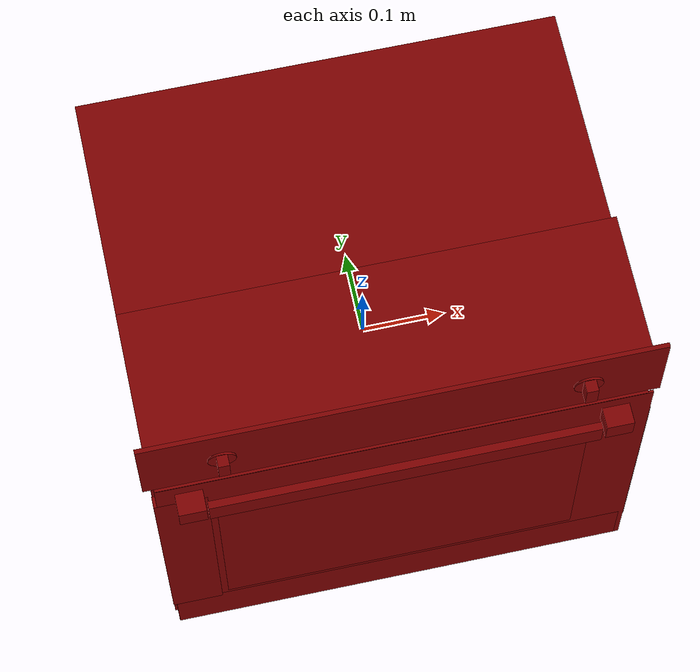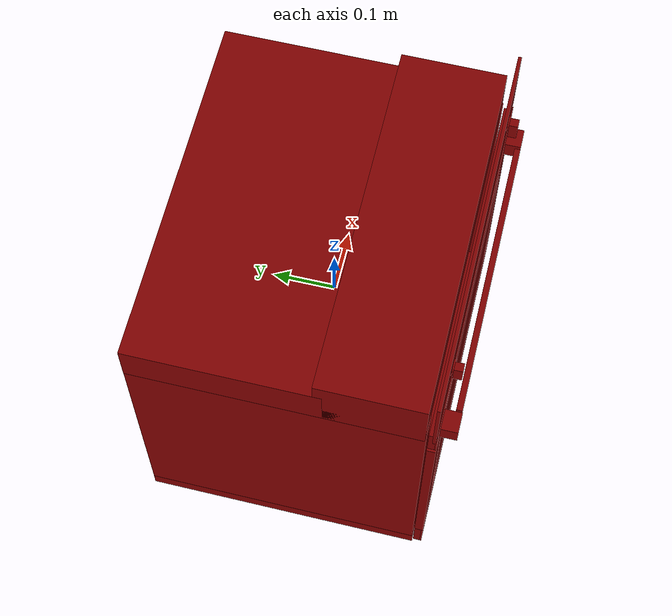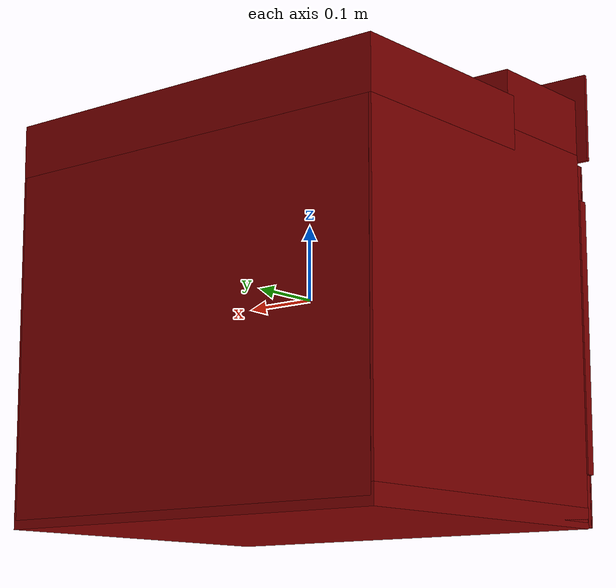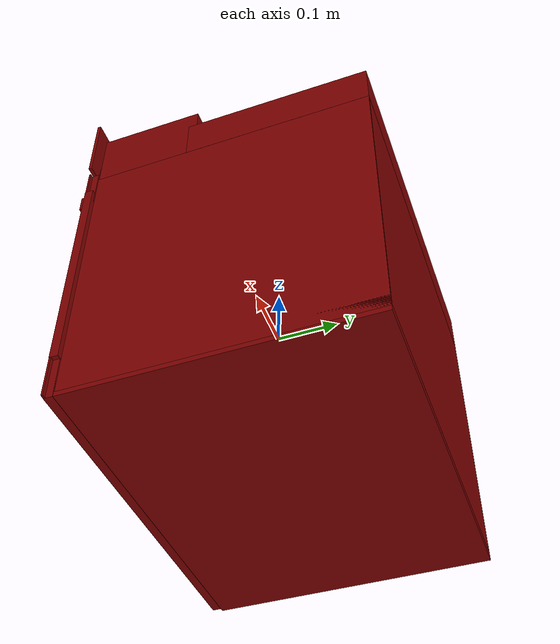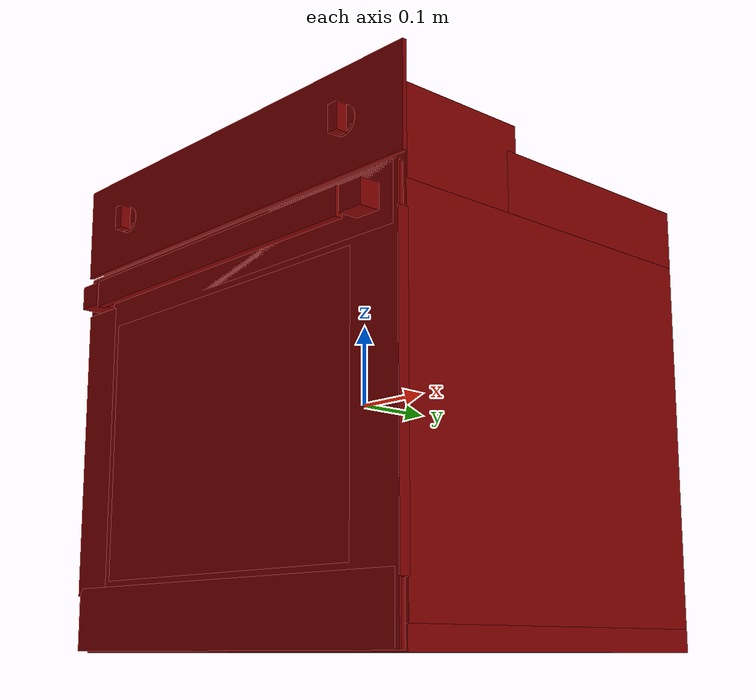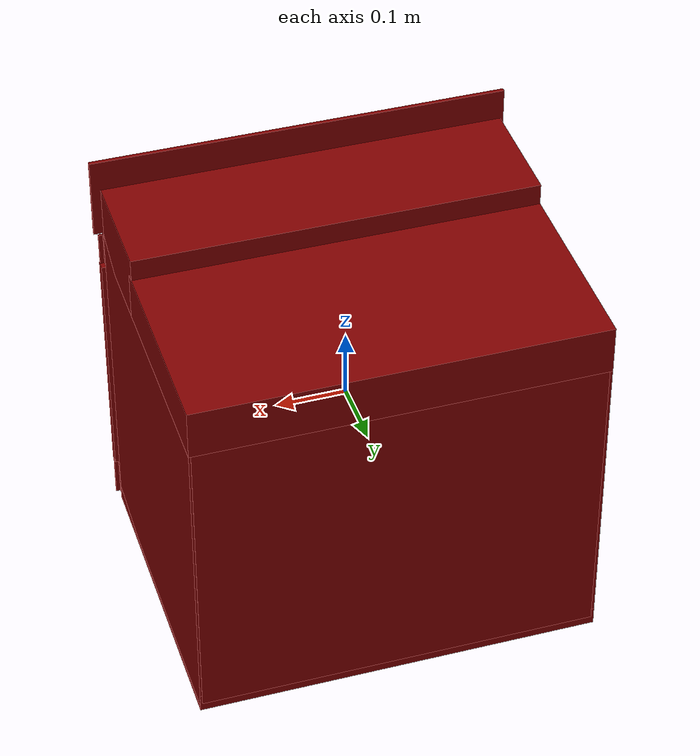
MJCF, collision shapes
<?xml version='1.0' encoding='UTF-8'?>
<mujoco model="model">
  <option timestep="0.002" gravity="0.0 0.0 -9.81"/>
  <compiler angle="radian"/>
  <asset>
    <mesh file="visuals/door.obj" name="door_vis"/>
    <mesh file="visuals/door_Clear.obj" name="door_Clear_vis"/>
    <mesh file="visuals/knob_temp.obj" name="knob_temp_vis"/>
    <mesh file="visuals/knob_time.obj" name="knob_time_vis"/>
    <mesh file="visuals/Body001.obj" name="Body001_vis"/>
    <mesh file="visuals/rack0.obj" name="rack0_vis"/>
    <mesh file="visuals/rack1.obj" name="rack1_vis"/>
    <texture file="visuals/T_BC001.png" name="Body001_material" type="2d"/>
    <material name="Body001_material" rgba="1 1 1 1.0" texture="Body001_material" shininess="0.4472135901451111" specular="0.3103448502657381"/>
    <texture file="visuals/T_BC001.png" name="door_material" type="2d"/>
    <material name="door_material" rgba="1 1 1 1.0" texture="door_material" shininess="0.4472135901451111" specular="0.3103448502657381"/>
    <material name="door_Clear_material" rgba="0.026161950081586838 0.021754005923867226 0.023210933431982994 0.699999988079071" shininess="0.4472135901451111" specular="0.3103448502657381"/>
    <texture file="visuals/T_BC001.png" name="knob_temp_material" type="2d"/>
    <material name="knob_temp_material" rgba="1 1 1 1.0" texture="knob_temp_material" shininess="0.4472135901451111" specular="0.3103448502657381"/>
    <texture file="visuals/T_BC001.png" name="knob_time_material" type="2d"/>
    <material name="knob_time_material" rgba="1 1 1 1.0" texture="knob_time_material" shininess="0.4472135901451111" specular="0.3103448502657381"/>
    <texture file="visuals/T_BC001.png" name="rack0_material" type="2d"/>
    <material name="rack0_material" rgba="1 1 1 1.0" texture="rack0_material" shininess="0.4472135901451111" specular="5"/>
    <texture file="visuals/T_BC001.png" name="rack1_material" type="2d"/>
    <material name="rack1_material" rgba="1 1 1 1.0" texture="rack1_material" shininess="0.4472135901451111" specular="5"/>
  </asset>
  <default>
    <default class="visual">
      <geom conaffinity="0" contype="0" group="1" type="mesh"/>
    </default>
    <default class="collision">
      <geom group="0" rgba="0.5 0 0 0.5"/>
    </default>
    <default class="spawn">
      <geom group="0" rgba="1 1 1 0.5" contype="0" conaffinity="0"/>
      <site group="0" rgba="1 1 1 0.5"/>
    </default>
    <default class="region">
      <geom group="1" conaffinity="0" contype="0" rgba="0 1 0 0"/>
    </default>
  </default>
  <worldbody>
    <body>
      <body name="object">
        <geom mesh="Body001_vis" type="mesh" solimp="0.998 0.998 0.001" solref="0.001 1" friction="0.95 0.3 0.1" class="visual" material="Body001_material"/>
        <geom class="collision" type="box" pos="-0.00193664 0.02093323 -0.28613102" size="0.2864971458911896 0.22578129172325134 0.013247320428490639" quat="1.0 0.0 0.0 0.0"/>
        <geom class="collision" type="box" pos="-0.00154104 0.22769734 -0.04044235" size="0.28295621275901794 0.01902342401444912 0.24726203083992004" quat="1.0 0.0 0.0 0.0"/>
        <geom class="collision" type="box" pos="-0.00069794 -0.21607623 0.24334489" size="0.29655829071998596 0.002629518276080489 0.059013936668634415" quat="1.0 0.0 0.0 0.0"/>
        <geom class="collision" type="box" pos="-0.00193662 0.09791662 0.19807979" size="0.2865249812602997 0.1488170027732849 0.035443782806396484" quat="1.0 0.0 0.0 0.0"/>
        <geom class="collision" type="box" pos="-0.27291391 0.02141622 -0.05052690" size="0.015519815497100353 0.2251206785440445 0.24085582792758942" quat="1.0 0.0 0.0 0.0"/>
        <geom class="collision" type="box" pos="0.27439969 0.02141622 -0.05052690" size="0.010160770267248154 0.22512070834636688 0.24085582792758942" quat="1.0 0.0 0.0 0.0"/>
        <geom class="collision" type="box" pos="-0.00193660 -0.11972154 0.21378756" size="0.2864971160888672 0.0827447921037674 0.05115167796611786" quat="1.0 0.0 0.0 0.0"/>
        <geom class="collision" type="box" pos="-0.23913118 -0.18324842 0.00186868" size="0.01999048702418804 0.0023430667351931334 0.0029860620852559805" quat="1.0 0.0 0.0 0.0"/>
        <geom class="collision" type="box" pos="-0.23913118 0.19480319 0.00186868" size="0.01999048702418804 0.002343070227652788 0.0029860620852559805" quat="1.0 0.0 0.0 0.0"/>
        <geom class="collision" type="box" pos="-0.22218245 0.00660851 0.00186868" size="0.004632970783859491 0.1872706115245819 0.0029860620852559805" quat="1.0 0.0 0.0 0.0"/>
        <geom class="collision" type="box" pos="-0.22218245 0.00660851 -0.17770423" size="0.004632970783859491 0.1872706115245819 0.0029860620852559805" quat="1.0 0.0 0.0 0.0"/>
        <geom class="collision" type="box" pos="-0.23913118 0.19480319 -0.17770423" size="0.01999048702418804 0.002343070227652788 0.0029860620852559805" quat="1.0 0.0 0.0 0.0"/>
        <geom class="collision" type="box" pos="-0.23913118 -0.18324842 -0.17770423" size="0.01999048702418804 0.0023430667351931334 0.0029860620852559805" quat="1.0 0.0 0.0 0.0"/>
        <geom class="collision" type="box" pos="0.24513460 -0.18324842 -0.17770423" size="0.01999048702418804 0.002343066968023777 0.002986062318086624" quat="1.0 0.0 0.0 0.0"/>
        <geom class="collision" type="box" pos="0.24513460 0.19480319 -0.17770424" size="0.01999048702418804 0.002343070227652788 0.002986062318086624" quat="1.0 0.0 0.0 0.0"/>
        <geom class="collision" type="box" pos="0.22818587 0.00660851 -0.17770424" size="0.004632970783859491 0.1872706115245819 0.00298607861623168" quat="1.0 0.0 0.0 0.0"/>
        <geom class="collision" type="box" pos="0.22818587 0.00660851 0.00186867" size="0.004632970783859491 0.1872706115245819 0.00298607861623168" quat="1.0 0.0 0.0 0.0"/>
        <geom class="collision" type="box" pos="0.24513460 0.19480319 0.00186866" size="0.01999048702418804 0.002343070227652788 0.002986062318086624" quat="1.0 0.0 0.0 0.0"/>
        <geom class="collision" type="box" pos="0.24513460 -0.18324842 0.00186868" size="0.01999048702418804 0.002343066968023777 0.002986062318086624" quat="1.0 0.0 0.0 0.0"/>
        <body name="door">
          <joint axis="1.0 0.0 0.0" pos="-0.00005300 -0.21782134 -0.29972702" limited="true" name="door_joint" range="0.0 1.15" type="hinge" damping="5" frictionloss="1" armature=".01" stiffness="0.05"/>
          <geom mesh="door_vis" type="mesh" solimp="0.998 0.998 0.001" solref="0.001 1" friction="0.95 0.3 0.1" class="visual" material="door_material"/>
          <geom class="collision" type="box" pos="0.00046126 -0.21861249 -0.05492104" size="0.21909628808498383 0.0013980461517348886 0.1593700349330902" quat="1.0 0.0 0.0 0.0"/>
          <geom class="collision" type="box" pos="-0.00091096 -0.21323308 0.14528914" size="0.2840000092983246 0.006776219699531794 0.03355890139937401" quat="1.0 0.0 0.0 0.0"/>
          <geom class="collision" type="box" pos="-0.24717758 -0.23204103 0.14453034" size="0.016126926988363266 0.013960613869130611 0.014420450665056705" quat="1.0 0.0 0.0 0.0"/>
          <geom class="collision" type="box" pos="-0.00155770 -0.24055816 0.14364417" size="0.22725321352481842 0.004590313881635666 0.01625778339803219" quat="1.0 0.0 0.0 0.0" name="door_handle_main"/>
          <geom class="collision" type="box" pos="0.24643572 -0.23150447 0.14453034" size="0.016126926988363266 0.013424050994217396 0.014420450665056705" quat="1.0 0.0 0.0 0.0"/>
          <geom class="collision" type="box" pos="-0.00091096 -0.21323371 -0.25923872" size="0.2840000092983246 0.006776845082640648 0.038145940750837326" quat="1.0 0.0 0.0 0.0"/>
          <geom class="collision" type="box" pos="0.25887435 -0.21322887 -0.05012046" size="0.031093288213014603 0.006772010587155819 0.1800360381603241" quat="1.0 0.0 0.0 0.0"/>
          <geom class="collision" type="box" pos="-0.25794844 -0.21323371 -0.05012046" size="0.031093288213014603 0.006776842754334211 0.1800360381603241" quat="1.0 0.0 0.0 0.0"/>
          <geom class="collision" type="box" pos="0.00205224 -0.21861187 -0.05961120" size="0.28721463680267334 0.001397435669787228 0.23735477030277252" quat="1.0 0.0 0.0 0.0" name="door_main"/>
          <body name="door_Clear">
            <geom mesh="door_Clear_vis" type="mesh" solimp="0.998 0.998 0.001" solref="0.001 1" friction="0.95 0.3 0.1" class="visual" material="door_Clear_material"/>
            <geom class="collision" type="box" pos="0.00046126 -0.21861249 -0.05492104" size="0.21909628808498383 0.0013980461517348886 0.1593700349330902" quat="1.0 0.0 0.0 0.0"/>
          </body>
        </body>
        <body name="knob_temp">
          <joint axis="0.0 1.0 0.0" pos="-0.20488144 -0.22651148 0.24171561" limited="true" name="knob_temp_joint" range="0.0 5.672320068981571" type="hinge" damping="0.05" armature="0.001"/>
          <geom mesh="knob_temp_vis" type="mesh" solimp="0.998 0.998 0.001" solref="0.001 1" friction="0.95 0.3 0.1" class="visual" material="knob_temp_material"/>
          <geom class="collision" type="cylinder" pos="-0.20504267 -0.22058901 0.24150233" size="0.016261283308267593 0.001246029743924737" quat="-8.429378084429118e-08 1.910639753077703e-07 -0.7071066498756409 -0.70710688829422"/>
          <geom class="collision" type="box" pos="-0.20502606 -0.22822505 0.24170913" size="0.006453981623053551 0.006868559401482344 0.014491677284240723" quat="1.0 0.0 0.0 0.0" name="knob_temp_main"/>
        </body>
        <body name="knob_time">
          <joint axis="0.0 -1.0 0.0" pos="0.20878408 -0.22651148 0.24171561" limited="true" name="knob_time_joint" range="-1.0471975511965976 3.141592653589793" type="hinge" damping="0.05" armature="0.001"/>
          <geom mesh="knob_time_vis" type="mesh" solimp="0.998 0.998 0.001" solref="0.001 1" friction="0.95 0.3 0.1" class="visual" material="knob_time_material"/>
          <geom class="collision" type="cylinder" pos="0.20840985 -0.22024779 0.24223804" size="0.016933094710111618 0.0013718231348320842" quat="0.7071068286895752 -0.7071067690849304 0.0 0.0"/>
          <geom class="collision" type="box" pos="0.20839458 -0.22804213 0.24201801" size="0.006867044139653444 0.007157900836318731 0.015419172123074532" quat="1.0 0.0 0.0 0.0" name="knob_time_main"/>
        </body>
        <body name="rack0">
          <geom class="region" name="reg_rack0" type="box" pos="0.003379884999999999 0.005310549999999997 -0.085907325" size="0.197394195 0.17918464 0.080419655"/>
          <joint axis="0.0 -1.0 0.0" pos="-0.00092675 0.00555170 -0.17236303" limited="true" name="rack0_joint" range="0.0 0.27" type="slide" damping="1" frictionloss="1" armature=".01" stiffness="0.05"/>
          <geom mesh="rack0_vis" type="mesh" solimp="0.998 0.998 0.001" solref="0.001 1" friction="0.95 0.3 0.1" class="visual" material="rack0_material"/>
          <geom class="collision" type="box" pos="-0.00159401 0.00519057 -0.17242928" size="0.23539897799491882 0.18345101177692413 0.001996527658775449" quat="1.0 0.0 0.0 0.0"/>
        </body>
        <body name="rack1">
          <geom class="region" name="reg_rack1" type="box" pos="0.003424935000000004 0.0053681549999999995 0.08215494500000001" size="0.200198225 0.15334683500000001 0.074994115"/>
          <joint axis="0.0 -1.0 0.0" pos="0.00297933 0.00590479 0.00490891" limited="true" name="rack1_joint" range="0.0 0.27" type="slide" damping="1" frictionloss="1" armature=".01" stiffness="0.05"/>
          <geom mesh="rack1_vis" type="mesh" solimp="0.998 0.998 0.001" solref="0.001 1" friction="0.95 0.3 0.1" class="visual" material="rack1_material"/>
          <geom class="collision" type="box" pos="0.00324421 -0.15580751 0.00485241" size="0.2191382348537445 0.005386208649724722 0.000975335540715605" quat="0.9696114659309387 -0.2446499913930893 0.0 0.0"/>
          <geom class="collision" type="box" pos="0.00324421 0.16981310 0.00563697" size="0.2191382497549057 0.0062574357725679874 0.0009753394406288862" quat="0.9829722046852112 0.1837543398141861 0.0 0.0"/>
          <geom class="collision" type="box" pos="0.21439539 0.00759415 0.00494021" size="0.008255455642938614 0.1678769439458847 0.0007354598492383957" quat="0.992330014705658 0.0 -0.12361680716276169 0.0"/>
          <geom class="collision" type="box" pos="-0.20759888 0.00759415 0.00532137" size="0.00825545471161604 0.1678769439458847 0.0007354590343311429" quat="0.9903293251991272 0.0 0.13873645663261414 0.0"/>
          <geom class="collision" type="box" pos="-0.22420780 0.00759608 0.00672018" size="0.008488689549267292 0.1679811328649521 0.0009384853765368462" quat="1.0 0.0 0.0 0.0"/>
          <geom class="collision" type="box" pos="0.23071461 0.00759608 0.00672018" size="0.008488678373396397 0.1679813414812088 0.0009384852019138634" quat="1.0 0.0 0.0 0.0"/>
          <geom class="collision" type="box" pos="0.00324420 0.18186837 0.00672018" size="0.2354736030101776 0.006032333709299564 0.0009753384510986507" quat="1.0 0.0 0.0 0.0"/>
          <geom class="collision" type="box" pos="0.00324420 -0.16847777 0.00672018" size="0.2354736030101776 0.007855944335460663 0.0009753387421369553" quat="1.0 0.0 0.0 0.0"/>
          <geom class="collision" type="box" pos="0.00324421 0.00548179 0.00257051" size="0.20255522429943085 0.157713383436203 0.0005935628432780504" quat="1.0 0.0 0.0 0.0"/>
        </body>
        <geom class="region" name="reg_int" type="box" pos="0.0036051 0.0057488599999999945 -0.05434541999999999" size="0.24546082 0.19720932 0.21202566"/>
        <geom class="region" name="reg_main" type="box" pos="-5.302000000001472e-05 0.01335668000000001 -3.00000000119649e-08" size="0.29853068 0.23436725 0.30335881"/>
      </body>
    </body>
  </worldbody>
  <actuator>
    <motor name="door_joint_actuator" joint="door_joint" gear="50"/>
    <motor name="knob_temp_joint_actuator" joint="knob_temp_joint" gear="50"/>
    <motor name="knob_time_joint_actuator" joint="knob_time_joint" gear="50"/>
    <motor name="rack0_joint_actuator" joint="rack0_joint" gear="50"/>
    <motor name="rack1_joint_actuator" joint="rack1_joint" gear="50"/>
  </actuator>
</mujoco>
